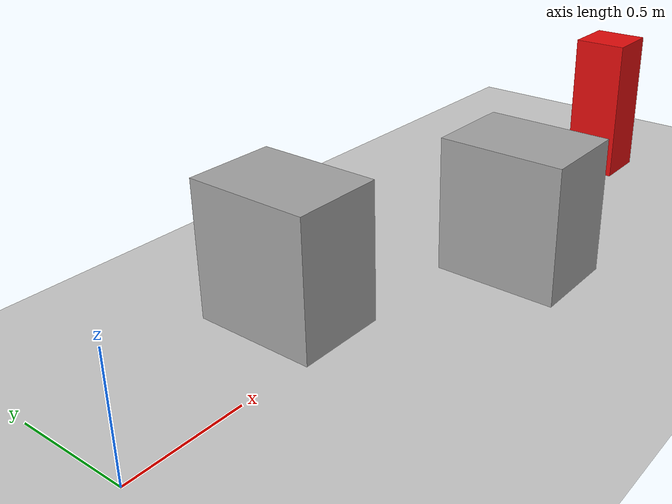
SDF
<?xml version="1.0"?>
<sdf version="1.6">
  <world name="default">
    <scene>
      <shadows>false</shadows>
    </scene>
    <include>
      <uri>model://ground_plane</uri>
    </include>
    <include>
      <uri>model://sun</uri>
    </include>
    <plugin name="gazebo_ros_state" filename="libgazebo_ros_state.so">
      <update_rate>20</update_rate>
    </plugin>
    <model name="left_block">
      <static>true</static>
      <pose>1.0 0.25 0.3 0 0 0</pose>
      <link name="body">
        <visual name="box">
          <geometry>
            <box>
              <size>0.4 0.55 0.6</size>
            </box>
          </geometry>
          <material>
            <ambient>0.65 0.65 0.65 1</ambient>
            <diffuse>0.65 0.65 0.65 1</diffuse>
          </material>
        </visual>
        <collision name="box">
          <geometry>
            <box>
              <size>0.4 0.55 0.6</size>
            </box>
          </geometry>
        </collision>
      </link>
    </model>
    <model name="right_block">
      <static>true</static>
      <pose>1.9 -0.25 0.3 0 0 0</pose>
      <link name="body">
        <visual name="box">
          <geometry>
            <box>
              <size>0.4 0.55 0.6</size>
            </box>
          </geometry>
          <material>
            <ambient>0.65 0.65 0.65 1</ambient>
            <diffuse>0.65 0.65 0.65 1</diffuse>
          </material>
        </visual>
        <collision name="box">
          <geometry>
            <box>
              <size>0.4 0.55 0.6</size>
            </box>
          </geometry>
        </collision>
      </link>
    </model>
    <model name="red_marker">
      <static>true</static>
      <pose>3.2 0.0 0.35 0 0 0</pose>
      <link name="body">
        <visual name="box">
          <geometry>
            <box>
              <size>0.25 0.25 0.7</size>
            </box>
          </geometry>
          <material>
            <ambient>0.9 0.05 0.05 1</ambient>
            <diffuse>0.9 0.05 0.05 1</diffuse>
          </material>
        </visual>
        <collision name="box">
          <geometry>
            <box>
              <size>0.25 0.25 0.7</size>
            </box>
          </geometry>
        </collision>
      </link>
    </model>
  </world>
</sdf>
